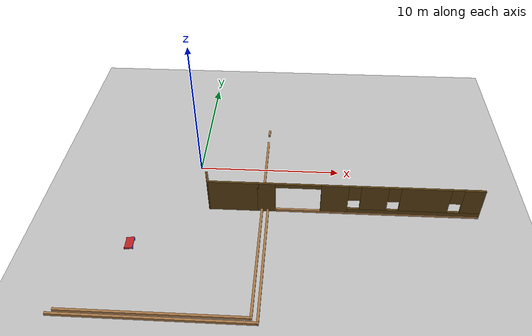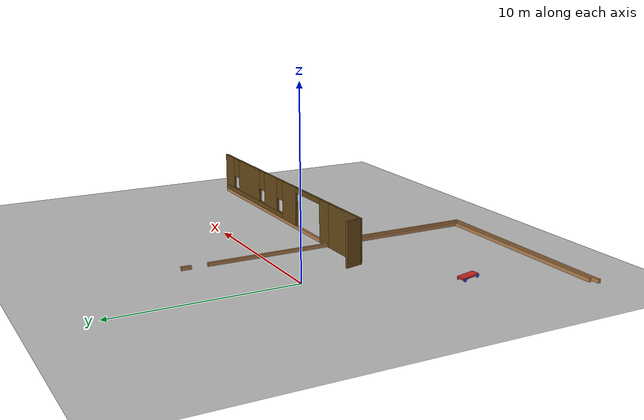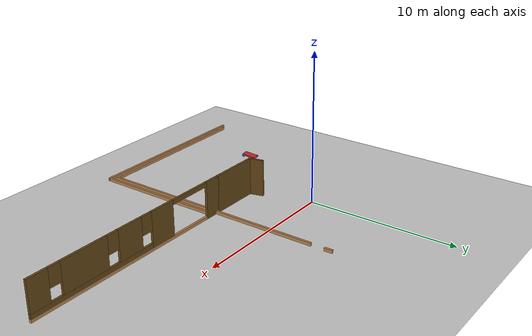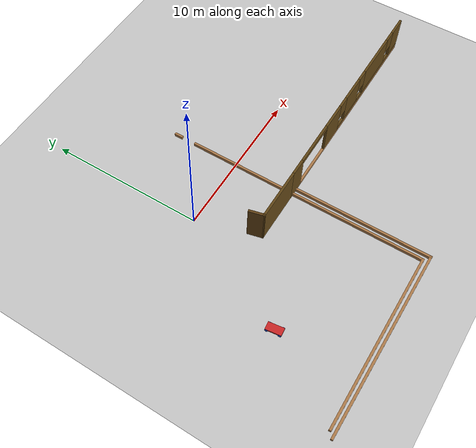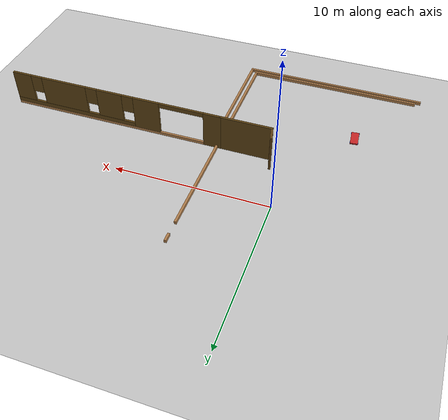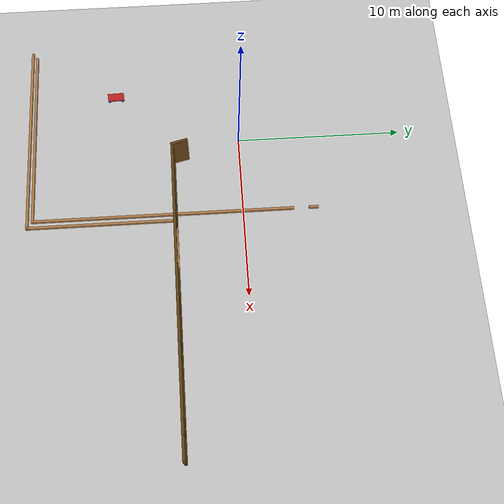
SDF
<sdf version="1.6">
 <world name="default">
  <model name="ground_plane">
   <static>1</static>
   <link name="link">
    <collision name="collision">
     <geometry><plane><normal>0 0 1</normal><size>100 100</size></plane></geometry>
     <surface>
      <contact><collide_bitmask>65535</collide_bitmask></contact>
      <friction><ode><mu>100</mu><mu2>50</mu2></ode></friction>
     </surface>
    </collision>
    <visual name="visual">
     <cast_shadows>0</cast_shadows>
     <geometry><plane><normal>0 0 1</normal><size>100 100</size></plane></geometry>
     <material>
      <script><uri>file://media/materials/scripts/gazebo.material</uri><name>Gazebo/Grey</name></script>
     </material>
    </visual>
   </link>
  </model>
  <model name="BuildMyWorld">
   <pose>-3.99019 0.7838 0 0 -0 0</pose>
   <link name="Wall_100">
    <collision name="Wall_100_Collision">
     <geometry><box><size>12.25 0.15 0.2</size></box></geometry>
     <pose>0 0 0.1 0 -0 0</pose>
    </collision>
    <visual name="Wall_100_Visual">
     <pose>0 0 0.1 0 -0 0</pose>
     <geometry><box><size>12.25 0.15 0.2</size></box></geometry>
     <material>
      <script><uri>file://media/materials/scripts/gazebo.material</uri><name>Gazebo/Wood</name></script>
      <ambient>1 1 1 1</ambient>
     </material>
     <meta><layer>0</layer></meta>
    </visual>
    <pose>3.08619 -13.6873 0 0 0 -0.002893</pose>
   </link>
   <link name="Wall_101">
    <collision name="Wall_101_Collision">
     <geometry><box><size>8.965 0.15 0.2</size></box></geometry>
     <pose>0 0 0.1 0 -0 0</pose>
    </collision>
    <visual name="Wall_101_Visual">
     <pose>0 0 0.1 0 -0 0</pose>
     <geometry><box><size>8.965 0.15 0.2</size></box></geometry>
     <material>
      <script><uri>file://media/materials/scripts/gazebo.material</uri><name>Gazebo/Wood</name></script>
      <ambient>1 1 1 1</ambient>
     </material>
     <meta><layer>0</layer></meta>
    </visual>
    <pose>9.13619 -9.29728 0 0 -0 1.5708</pose>
   </link>
   <link name="Wall_51">
    <collision name="Wall_51_Collision">
     <geometry><box><size>11.5 0.15 0.2</size></box></geometry>
     <pose>0 0 0.1 0 -0 0</pose>
    </collision>
    <visual name="Wall_51_Visual">
     <pose>0 0 0.1 0 -0 0</pose>
     <geometry><box><size>11.5 0.15 0.2</size></box></geometry>
     <material>
      <script><uri>file://media/materials/scripts/gazebo.material</uri><name>Gazebo/Wood</name></script>
      <ambient>1 1 1 1</ambient>
     </material>
     <meta><layer>0</layer></meta>
    </visual>
    <pose>3.06419 -13.3858 0 0 -0 0</pose>
   </link>
   <link name="Wall_52">
    <pose>8.73919 -4.86228 0 0 -0 1.5708</pose>
    <visual name="Wall_52_Visual_0">
     <pose>-0.730883 0 0.1 0 -0 0</pose>
     <geometry><box><size>15.7353 0.15 0.2</size></box></geometry>
     <material>
      <script><uri>file://media/materials/scripts/gazebo.material</uri><name>Gazebo/Wood</name></script>
      <ambient>1 1 1 1</ambient>
     </material>
     <meta><layer>0</layer></meta>
    </visual>
    <collision name="Wall_52_Collision_0">
     <geometry><box><size>15.7353 0.15 0.2</size></box></geometry>
     <pose>-0.730883 0 0.1 0 -0 0</pose>
    </collision>
    <visual name="Wall_52_Visual_1">
     <pose>8.31765 0 0.1 0 -0 0</pose>
     <geometry><box><size>0.561765 0.15 0.2</size></box></geometry>
     <material>
      <script><uri>file://media/materials/scripts/gazebo.material</uri><name>Gazebo/Wood</name></script>
      <ambient>1 1 1 1</ambient>
     </material>
     <meta><layer>0</layer></meta>
    </visual>
    <collision name="Wall_52_Collision_1">
     <geometry><box><size>0.561765 0.15 0.2</size></box></geometry>
     <pose>8.31765 0 0.1 0 -0 0</pose>
    </collision>
   </link>
   <link name="Wall_55">
    <collision name="Wall_55_Collision">
     <geometry><box><size>1.02553 0.15 2.5</size></box></geometry>
     <pose>0 0 1.25 0 -0 0</pose>
    </collision>
    <visual name="Wall_55_Visual">
     <pose>0 0 1.25 0 -0 0</pose>
     <geometry><box><size>1.02553 0.15 2.5</size></box></geometry>
     <material>
      <script><uri>file://media/materials/scripts/gazebo.material</uri><name>Gazebo/Grey</name></script>
      <ambient>0.384314 0.258824 0.0823529 1</ambient>
     </material>
     <meta><layer>0</layer></meta>
    </visual>
    <pose>5.11981 -4.37063 0 0 0 -1.32872</pose>
   </link>
   <link name="Wall_56">
    <collision name="Wall_56_Collision">
     <geometry><box><size>3.43004 0.15 2.5</size></box></geometry>
     <pose>0 0 1.25 0 -0 0</pose>
    </collision>
    <visual name="Wall_56_Visual">
     <pose>0 0 1.25 0 -0 0</pose>
     <geometry><box><size>3.43004 0.15 2.5</size></box></geometry>
     <material>
      <script><uri>file://media/materials/scripts/gazebo.material</uri><name>Gazebo/Grey</name></script>
      <ambient>0.384314 0.27451 0.0862745 1</ambient>
     </material>
     <meta><layer>0</layer></meta>
    </visual>
    <pose>6.86477 -4.79563 0 0 -0 0</pose>
   </link>
   <link name="Wall_58">
    <pose>15.8398 -4.79563 0 0 -0 0</pose>
    <visual name="Wall_58_Visual_0">
     <pose>-6.78269 0 1.25 0 -0 0</pose>
     <geometry><box><size>1.18462 0.15 2.5</size></box></geometry>
     <material>
      <script><uri>file://media/materials/scripts/gazebo.material</uri><name>Gazebo/Grey</name></script>
      <ambient>0.384314 0.27451 0.0862745 1</ambient>
     </material>
     <meta><layer>0</layer></meta>
    </visual>
    <collision name="Wall_58_Collision_0">
     <geometry><box><size>1.18462 0.15 2.5</size></box></geometry>
     <pose>-6.78269 0 1.25 0 -0 0</pose>
    </collision>
    <visual name="Wall_58_Visual_1">
     <pose>0.592308 0 0.1 0 -0 0</pose>
     <geometry><box><size>13.5654 0.15 0.2</size></box></geometry>
     <material>
      <script><uri>file://media/materials/scripts/gazebo.material</uri><name>Gazebo/Wood</name></script>
      <ambient>0.384314 0.27451 0.0862745 1</ambient>
     </material>
     <meta><layer>0</layer></meta>
    </visual>
    <collision name="Wall_58_Collision_1">
     <geometry><box><size>13.5654 0.15 0.2</size></box></geometry>
     <pose>0.592308 0 0.1 0 -0 0</pose>
    </collision>
    <visual name="Wall_58_Visual_2">
     <pose>-2.29175 0 1.35 0 -0 0</pose>
     <geometry><box><size>1.79726 0.15 2.3</size></box></geometry>
     <material>
      <script><uri>file://media/materials/scripts/gazebo.material</uri><name>Gazebo/Grey</name></script>
      <ambient>0.384314 0.27451 0.0862745 1</ambient>
     </material>
     <meta><layer>0</layer></meta>
    </visual>
    <collision name="Wall_58_Collision_2">
     <geometry><box><size>1.79726 0.15 2.3</size></box></geometry>
     <pose>-2.29175 0 1.35 0 -0 0</pose>
    </collision>
    <visual name="Wall_58_Visual_3">
     <pose>2.99094 0 0.35 0 -0 0</pose>
     <geometry><box><size>8.76812 0.15 0.3</size></box></geometry>
     <material>
      <script><uri>file://media/materials/scripts/gazebo.material</uri><name>Gazebo/Grey</name></script>
      <ambient>0.384314 0.27451 0.0862745 1</ambient>
     </material>
     <meta><layer>0</layer></meta>
    </visual>
    <collision name="Wall_58_Collision_3">
     <geometry><box><size>8.76812 0.15 0.3</size></box></geometry>
     <pose>2.99094 0 0.35 0 -0 0</pose>
    </collision>
    <visual name="Wall_58_Visual_4">
     <pose>0.302195 0 1.5 0 -0 0</pose>
     <geometry><box><size>1.79063 0.15 2</size></box></geometry>
     <material>
      <script><uri>file://media/materials/scripts/gazebo.material</uri><name>Gazebo/Grey</name></script>
      <ambient>0.384314 0.27451 0.0862745 1</ambient>
     </material>
     <meta><layer>0</layer></meta>
    </visual>
    <collision name="Wall_58_Collision_4">
     <geometry><box><size>1.79063 0.15 2</size></box></geometry>
     <pose>0.302195 0 1.5 0 -0 0</pose>
    </collision>
    <visual name="Wall_58_Visual_5">
     <pose>3.60987 0 1.5 0 -0 0</pose>
     <geometry><box><size>3.22473 0.15 2</size></box></geometry>
     <material>
      <script><uri>file://media/materials/scripts/gazebo.material</uri><name>Gazebo/Grey</name></script>
      <ambient>0.384314 0.27451 0.0862745 1</ambient>
     </material>
     <meta><layer>0</layer></meta>
    </visual>
    <collision name="Wall_58_Collision_5">
     <geometry><box><size>3.22473 0.15 2</size></box></geometry>
     <pose>3.60987 0 1.5 0 -0 0</pose>
    </collision>
    <visual name="Wall_58_Visual_6">
     <pose>6.69862 0 1.5 0 -0 0</pose>
     <geometry><box><size>1.35277 0.15 2</size></box></geometry>
     <material>
      <script><uri>file://media/materials/scripts/gazebo.material</uri><name>Gazebo/Grey</name></script>
      <ambient>0.384314 0.27451 0.0862745 1</ambient>
     </material>
     <meta><layer>0</layer></meta>
    </visual>
    <collision name="Wall_58_Collision_6">
     <geometry><box><size>1.35277 0.15 2</size></box></geometry>
     <pose>6.69862 0 1.5 0 -0 0</pose>
    </collision>
    <visual name="Wall_58_Visual_7">
     <pose>-0.993119 0 1.9 0 -0 0</pose>
     <geometry><box><size>0.8 0.15 1.2</size></box></geometry>
     <material>
      <script><uri>file://media/materials/scripts/gazebo.material</uri><name>Gazebo/Grey</name></script>
      <ambient>0.384314 0.27451 0.0862745 1</ambient>
     </material>
     <meta><layer>0</layer></meta>
    </visual>
    <collision name="Wall_58_Collision_7">
     <geometry><box><size>0.8 0.15 1.2</size></box></geometry>
     <pose>-0.993119 0 1.9 0 -0 0</pose>
    </collision>
    <visual name="Wall_58_Visual_8">
     <pose>1.59751 0 1.9 0 -0 0</pose>
     <geometry><box><size>0.8 0.15 1.2</size></box></geometry>
     <material>
      <script><uri>file://media/materials/scripts/gazebo.material</uri><name>Gazebo/Grey</name></script>
      <ambient>0.384314 0.27451 0.0862745 1</ambient>
     </material>
     <meta><layer>0</layer></meta>
    </visual>
    <collision name="Wall_58_Collision_8">
     <geometry><box><size>0.8 0.15 1.2</size></box></geometry>
     <pose>1.59751 0 1.9 0 -0 0</pose>
    </collision>
    <visual name="Wall_58_Visual_9">
     <pose>5.62223 0 1.9 0 -0 0</pose>
     <geometry><box><size>0.8 0.15 1.2</size></box></geometry>
     <material>
      <script><uri>file://media/materials/scripts/gazebo.material</uri><name>Gazebo/Grey</name></script>
      <ambient>0.384314 0.27451 0.0862745 1</ambient>
     </material>
     <meta><layer>0</layer></meta>
    </visual>
    <collision name="Wall_58_Collision_9">
     <geometry><box><size>0.8 0.15 1.2</size></box></geometry>
     <pose>5.62223 0 1.9 0 -0 0</pose>
    </collision>
    <visual name="Wall_58_Visual_10">
     <pose>-4.69038 0 2.35 0 -0 0</pose>
     <geometry><box><size>3 0.15 0.3</size></box></geometry>
     <material>
      <script><uri>file://media/materials/scripts/gazebo.material</uri><name>Gazebo/Grey</name></script>
      <ambient>0.384314 0.27451 0.0862745 1</ambient>
     </material>
     <meta><layer>0</layer></meta>
    </visual>
    <collision name="Wall_58_Collision_10">
     <geometry><box><size>3 0.15 0.3</size></box></geometry>
     <pose>-4.69038 0 2.35 0 -0 0</pose>
    </collision>
   </link>
   <static>1</static>
  </model>
  <model name="4wheeler_0">
   <link name="link_0">
    <pose>0 0 0.04 0 -0 0</pose>
    <inertial>
     <mass>1</mass>
     <inertia>
      <ixx>0.166667</ixx>
      <ixy>0</ixy>
      <ixz>0</ixz>
      <iyy>0.166667</iyy>
      <iyz>0</iyz>
      <izz>0.166667</izz>
     </inertia>
    </inertial>
    <visual name="visual">
     <geometry><box><size>1 0.5 0.1</size></box></geometry>
     <material>
      <lighting>1</lighting>
      <script><uri>file://media/materials/scripts/gazebo.material</uri><name>Gazebo/RedBright</name></script>
      <shader type="vertex"><normal_map>__default__</normal_map></shader>
     </material>
    </visual>
    <collision name="collision">
     <geometry><box><size>1 0.5 0.1</size></box></geometry>
     <surface>
      <friction>
       <ode><mu>1</mu><mu2>1</mu2><fdir1>0 0 0</fdir1><slip1>0</slip1><slip2>0</slip2></ode>
       <torsional>
        <coefficient>1</coefficient>
        <patch_radius>0</patch_radius>
        <surface_radius>0</surface_radius>
        <use_patch_radius>1</use_patch_radius>
        <ode><slip>0</slip></ode>
       </torsional>
      </friction>
      <bounce><restitution_coefficient>0</restitution_coefficient><threshold>1e+06</threshold></bounce>
      <contact>
       <collide_without_contact>0</collide_without_contact>
       <collide_without_contact_bitmask>1</collide_without_contact_bitmask>
       <collide_bitmask>1</collide_bitmask>
       <ode>
        <soft_cfm>0</soft_cfm>
        <soft_erp>0.2</soft_erp>
        <kp>1e+13</kp>
        <kd>1</kd>
        <max_vel>0.01</max_vel>
        <min_depth>0</min_depth>
       </ode>
       <bullet>
        <split_impulse>1</split_impulse>
        <split_impulse_penetration_threshold>-0.01</split_impulse_penetration_threshold>
        <soft_cfm>0</soft_cfm>
        <soft_erp>0.2</soft_erp>
        <kp>1e+13</kp>
        <kd>1</kd>
       </bullet>
      </contact>
     </surface>
    </collision>
   </link>
   <link name="link_1">
    <pose>0.4 0.2575 -0.01 1.5708 -0 0</pose>
    <inertial>
     <mass>1</mass>
     <inertia><ixx>0.145833</ixx><ixy>0</ixy><ixz>0</ixz><iyy>0.145833</iyy><iyz>0</iyz><izz>0.125</izz></inertia>
    </inertial>
    <visual name="visual">
     <geometry><cylinder><radius>0.1</radius><length>0.015</length></cylinder></geometry>
     <material>
      <lighting>1</lighting>
      <script><uri>file://media/materials/scripts/gazebo.material</uri><name>Gazebo/Blue</name></script>
      <shader type="vertex"><normal_map>__default__</normal_map></shader>
     </material>
    </visual>
    <collision name="collision">
     <geometry><cylinder><radius>0.1</radius><length>0.015</length></cylinder></geometry>
     <surface>
      <friction>
       <ode><mu>1</mu><mu2>1</mu2><fdir1>0 0 0</fdir1><slip1>0</slip1><slip2>0</slip2></ode>
       <torsional>
        <coefficient>1</coefficient>
        <patch_radius>0</patch_radius>
        <surface_radius>0</surface_radius>
        <use_patch_radius>1</use_patch_radius>
        <ode><slip>0</slip></ode>
       </torsional>
      </friction>
      <bounce><restitution_coefficient>0</restitution_coefficient><threshold>1e+06</threshold></bounce>
      <contact>
       <collide_without_contact>0</collide_without_contact>
       <collide_without_contact_bitmask>1</collide_without_contact_bitmask>
       <collide_bitmask>1</collide_bitmask>
       <ode>
        <soft_cfm>0</soft_cfm>
        <soft_erp>0.2</soft_erp>
        <kp>1e+13</kp>
        <kd>1</kd>
        <max_vel>0.01</max_vel>
        <min_depth>0</min_depth>
       </ode>
       <bullet>
        <split_impulse>1</split_impulse>
        <split_impulse_penetration_threshold>-0.01</split_impulse_penetration_threshold>
        <soft_cfm>0</soft_cfm>
        <soft_erp>0.2</soft_erp>
        <kp>1e+13</kp>
        <kd>1</kd>
       </bullet>
      </contact>
     </surface>
    </collision>
   </link>
   <link name="link_1_clone">
    <pose>-0.4 0.2575 -0.01 1.5708 -0 0</pose>
    <inertial>
     <mass>1</mass>
     <inertia><ixx>0.145833</ixx><ixy>0</ixy><ixz>0</ixz><iyy>0.145833</iyy><iyz>0</iyz><izz>0.125</izz></inertia>
    </inertial>
    <visual name="visual">
     <geometry><cylinder><radius>0.1</radius><length>0.015</length></cylinder></geometry>
     <material>
      <lighting>1</lighting>
      <script><uri>file://media/materials/scripts/gazebo.material</uri><name>Gazebo/Blue</name></script>
      <shader type="vertex"><normal_map>__default__</normal_map></shader>
     </material>
    </visual>
    <collision name="collision">
     <geometry><cylinder><radius>0.1</radius><length>0.015</length></cylinder></geometry>
     <surface>
      <friction>
       <ode><mu>1</mu><mu2>1</mu2><fdir1>0 0 0</fdir1><slip1>0</slip1><slip2>0</slip2></ode>
       <torsional>
        <coefficient>1</coefficient>
        <patch_radius>0</patch_radius>
        <surface_radius>0</surface_radius>
        <use_patch_radius>1</use_patch_radius>
        <ode><slip>0</slip></ode>
       </torsional>
      </friction>
      <bounce><restitution_coefficient>0</restitution_coefficient><threshold>1e+06</threshold></bounce>
      <contact>
       <collide_without_contact>0</collide_without_contact>
       <collide_without_contact_bitmask>1</collide_without_contact_bitmask>
       <collide_bitmask>1</collide_bitmask>
       <ode>
        <soft_cfm>0</soft_cfm>
        <soft_erp>0.2</soft_erp>
        <kp>1e+13</kp>
        <kd>1</kd>
        <max_vel>0.01</max_vel>
        <min_depth>0</min_depth>
       </ode>
       <bullet>
        <split_impulse>1</split_impulse>
        <split_impulse_penetration_threshold>-0.01</split_impulse_penetration_threshold>
        <soft_cfm>0</soft_cfm>
        <soft_erp>0.2</soft_erp>
        <kp>1e+13</kp>
        <kd>1</kd>
       </bullet>
      </contact>
     </surface>
    </collision>
   </link>
   <link name="link_1_clone_0">
    <pose>0.4 -0.257501 -0.01 1.5708 -0 0</pose>
    <inertial>
     <mass>1</mass>
     <inertia><ixx>0.145833</ixx><ixy>0</ixy><ixz>0</ixz><iyy>0.145833</iyy><iyz>0</iyz><izz>0.125</izz></inertia>
    </inertial>
    <visual name="visual">
     <geometry><cylinder><radius>0.1</radius><length>0.015</length></cylinder></geometry>
     <material>
      <lighting>1</lighting>
      <script><uri>file://media/materials/scripts/gazebo.material</uri><name>Gazebo/Blue</name></script>
      <shader type="vertex"><normal_map>__default__</normal_map></shader>
     </material>
    </visual>
    <collision name="collision">
     <geometry><cylinder><radius>0.1</radius><length>0.015</length></cylinder></geometry>
     <surface>
      <friction>
       <ode><mu>1</mu><mu2>1</mu2><fdir1>0 0 0</fdir1><slip1>0</slip1><slip2>0</slip2></ode>
       <torsional>
        <coefficient>1</coefficient>
        <patch_radius>0</patch_radius>
        <surface_radius>0</surface_radius>
        <use_patch_radius>1</use_patch_radius>
        <ode><slip>0</slip></ode>
       </torsional>
      </friction>
      <bounce><restitution_coefficient>0</restitution_coefficient><threshold>1e+06</threshold></bounce>
      <contact>
       <collide_without_contact>0</collide_without_contact>
       <collide_without_contact_bitmask>1</collide_without_contact_bitmask>
       <collide_bitmask>1</collide_bitmask>
       <ode>
        <soft_cfm>0</soft_cfm>
        <soft_erp>0.2</soft_erp>
        <kp>1e+13</kp>
        <kd>1</kd>
        <max_vel>0.01</max_vel>
        <min_depth>0</min_depth>
       </ode>
       <bullet>
        <split_impulse>1</split_impulse>
        <split_impulse_penetration_threshold>-0.01</split_impulse_penetration_threshold>
        <soft_cfm>0</soft_cfm>
        <soft_erp>0.2</soft_erp>
        <kp>1e+13</kp>
        <kd>1</kd>
       </bullet>
      </contact>
     </surface>
    </collision>
   </link>
   <link name="link_1_clone_1">
    <pose>-0.4 -0.257501 -0.01 1.5708 -0 0</pose>
    <inertial>
     <mass>1</mass>
     <inertia><ixx>0.145833</ixx><ixy>0</ixy><ixz>0</ixz><iyy>0.145833</iyy><iyz>0</iyz><izz>0.125</izz></inertia>
    </inertial>
    <visual name="visual">
     <geometry><cylinder><radius>0.1</radius><length>0.015</length></cylinder></geometry>
     <material>
      <lighting>1</lighting>
      <script><uri>file://media/materials/scripts/gazebo.material</uri><name>Gazebo/Blue</name></script>
      <shader type="vertex"><normal_map>__default__</normal_map></shader>
     </material>
    </visual>
    <collision name="collision">
     <geometry><cylinder><radius>0.1</radius><length>0.015</length></cylinder></geometry>
     <surface>
      <friction>
       <ode><mu>1</mu><mu2>1</mu2><fdir1>0 0 0</fdir1><slip1>0</slip1><slip2>0</slip2></ode>
       <torsional>
        <coefficient>1</coefficient>
        <patch_radius>0</patch_radius>
        <surface_radius>0</surface_radius>
        <use_patch_radius>1</use_patch_radius>
        <ode><slip>0</slip></ode>
       </torsional>
      </friction>
      <bounce><restitution_coefficient>0</restitution_coefficient><threshold>1e+06</threshold></bounce>
      <contact>
       <collide_without_contact>0</collide_without_contact>
       <collide_without_contact_bitmask>1</collide_without_contact_bitmask>
       <collide_bitmask>1</collide_bitmask>
       <ode>
        <soft_cfm>0</soft_cfm>
        <soft_erp>0.2</soft_erp>
        <kp>1e+13</kp>
        <kd>1</kd>
        <max_vel>0.01</max_vel>
        <min_depth>0</min_depth>
       </ode>
       <bullet>
        <split_impulse>1</split_impulse>
        <split_impulse_penetration_threshold>-0.01</split_impulse_penetration_threshold>
        <soft_cfm>0</soft_cfm>
        <soft_erp>0.2</soft_erp>
        <kp>1e+13</kp>
        <kd>1</kd>
       </bullet>
      </contact>
     </surface>
    </collision>
   </link>
   <joint name="link_0_JOINT_0" type="revolute">
    <parent>link_0</parent>
    <child>link_1</child>
    <axis>
     <xyz>0 0 1</xyz>
     <use_parent_model_frame>0</use_parent_model_frame>
     <limit>
      <lower>-1.79769e+308</lower>
      <upper>1.79769e+308</upper>
      <effort>-1</effort>
      <velocity>-1</velocity>
     </limit>
     <dynamics>
      <spring_reference>0</spring_reference>
      <spring_stiffness>0</spring_stiffness>
      <damping>0</damping>
     </dynamics>
    </axis>
    <physics>
     <ode><limit><cfm>0</cfm><erp>0.2</erp></limit><suspension><cfm>0</cfm><erp>0.2</erp></suspension></ode>
    </physics>
   </joint>
   <joint name="link_0_JOINT_1" type="revolute">
    <parent>link_0</parent>
    <child>link_1_clone_1</child>
    <axis>
     <xyz>0 0 1</xyz>
     <use_parent_model_frame>0</use_parent_model_frame>
     <limit>
      <lower>-1.79769e+308</lower>
      <upper>1.79769e+308</upper>
      <effort>-1</effort>
      <velocity>-1</velocity>
     </limit>
     <dynamics>
      <spring_reference>0</spring_reference>
      <spring_stiffness>0</spring_stiffness>
      <damping>0</damping>
     </dynamics>
    </axis>
    <physics>
     <ode><limit><cfm>0</cfm><erp>0.2</erp></limit><suspension><cfm>0</cfm><erp>0.2</erp></suspension></ode>
    </physics>
   </joint>
   <joint name="link_0_JOINT_2" type="revolute">
    <parent>link_0</parent>
    <child>link_1_clone</child>
    <axis>
     <xyz>0 0 1</xyz>
     <use_parent_model_frame>0</use_parent_model_frame>
     <limit>
      <lower>-1.79769e+308</lower>
      <upper>1.79769e+308</upper>
      <effort>-1</effort>
      <velocity>-1</velocity>
     </limit>
     <dynamics>
      <spring_reference>0</spring_reference>
      <spring_stiffness>0</spring_stiffness>
      <damping>0</damping>
     </dynamics>
    </axis>
    <physics>
     <ode><limit><cfm>0</cfm><erp>0.2</erp></limit><suspension><cfm>0</cfm><erp>0.2</erp></suspension></ode>
    </physics>
   </joint>
   <joint name="link_0_JOINT_3" type="revolute">
    <parent>link_0</parent>
    <child>link_1_clone_0</child>
    <axis>
     <xyz>0 0 1</xyz>
     <use_parent_model_frame>0</use_parent_model_frame>
     <limit>
      <lower>-1.79769e+308</lower>
      <upper>1.79769e+308</upper>
      <effort>-1</effort>
      <velocity>-1</velocity>
     </limit>
     <dynamics>
      <spring_reference>0</spring_reference>
      <spring_stiffness>0</spring_stiffness>
      <damping>0</damping>
     </dynamics>
    </axis>
    <physics>
     <ode><limit><cfm>0</cfm><erp>0.2</erp></limit><suspension><cfm>0</cfm><erp>0.2</erp></suspension></ode>
    </physics>
   </joint>
   <static>0</static>
   <pose>-3.44628 -7.5395 0.164909 0.014326 0.104709 1.66417</pose>
  </model>
 </world>
</sdf>
